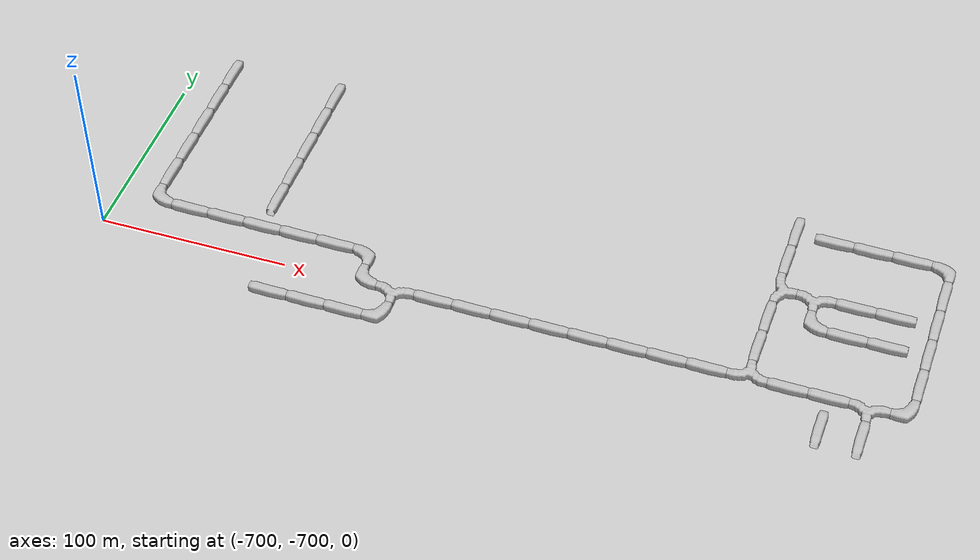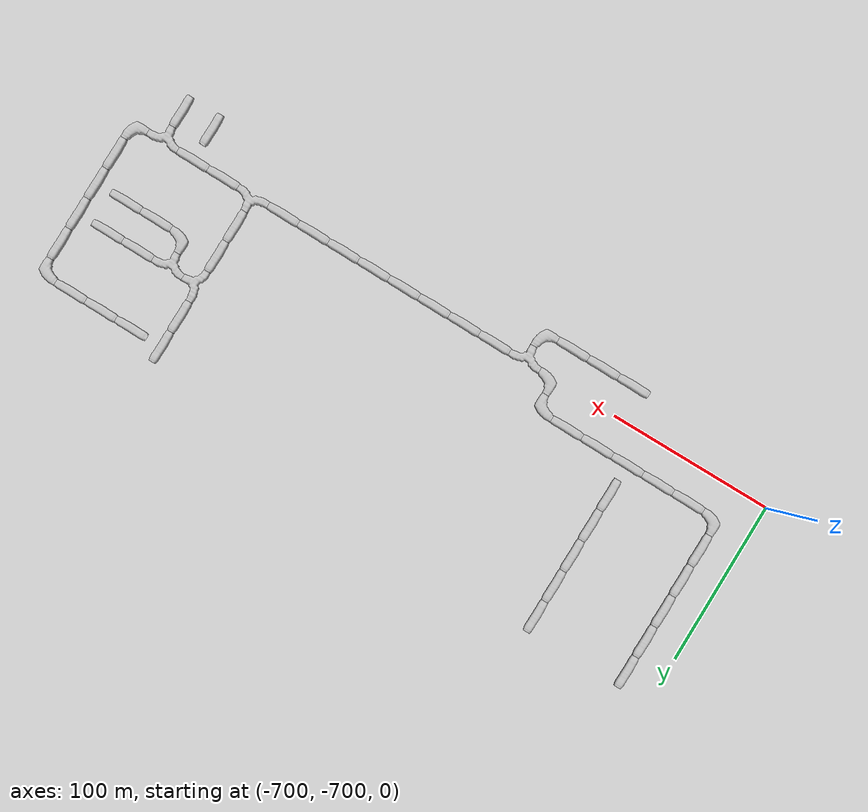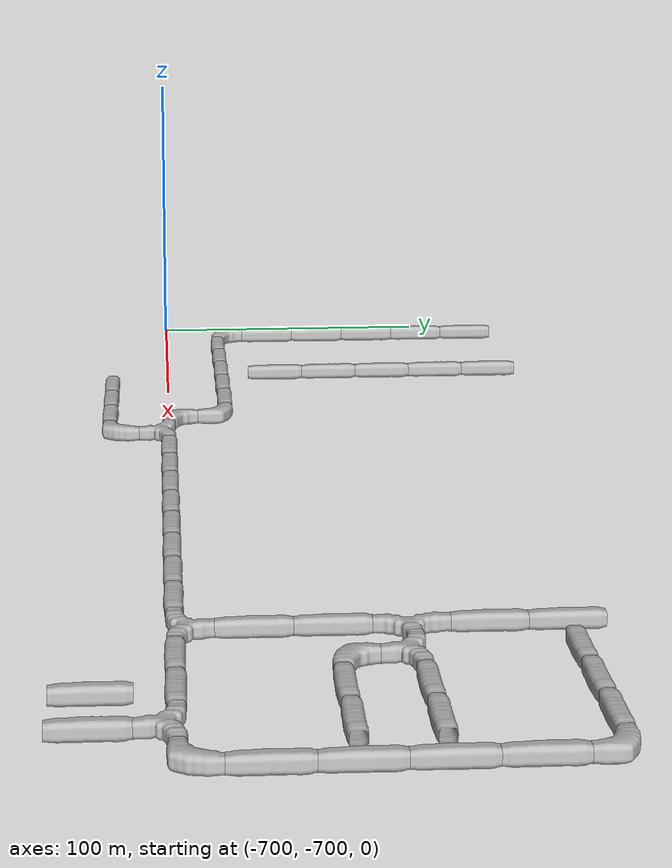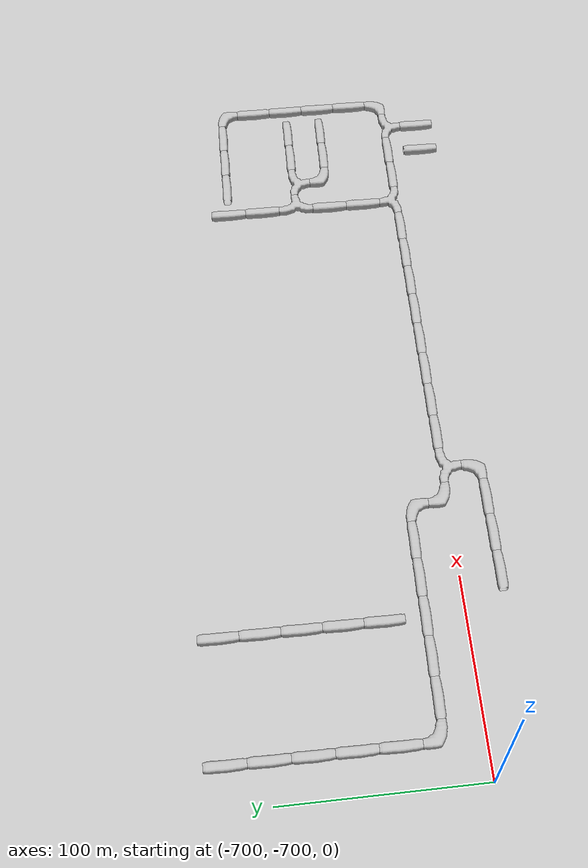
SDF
<sdf version="1.6">
 <world name="cave_32000_16">
  <include>
   <static>true</static>
   <name>cave_-30_-36</name>
   <pose>-600 -720 0 0 0 1.5707963267948966</pose>
   <uri>model://cave_straight_20m</uri>
  </include>
  <include>
   <static>true</static>
   <name>cave_-29_-36</name>
   <pose>-580 -720 0 0 0 1.5707963267948966</pose>
   <uri>model://cave_straight_20m</uri>
  </include>
  <include>
   <static>true</static>
   <name>cave_-28_-36</name>
   <pose>-560 -720 0 0 0 1.5707963267948966</pose>
   <uri>model://cave_straight_20m</uri>
  </include>
  <include>
   <static>true</static>
   <name>cave_-27_-36</name>
   <pose>-540 -720 0 0 0 1.5707963267948966</pose>
   <uri>model://cave_L_20m</uri>
  </include>
  <include>
   <static>true</static>
   <name>cave_-27_-35</name>
   <pose>-540 -700 0 0 0 3.141592653589793</pose>
   <uri>model://cave_3way_20m</uri>
  </include>
  <include>
   <static>true</static>
   <name>cave_-26_-35</name>
   <pose>-520 -700 0 0 0 1.5707963267948966</pose>
   <uri>model://cave_straight_20m</uri>
  </include>
  <include>
   <static>true</static>
   <name>cave_-25_-35</name>
   <pose>-500 -700 0 0 0 1.5707963267948966</pose>
   <uri>model://cave_straight_20m</uri>
  </include>
  <include>
   <static>true</static>
   <name>cave_-24_-35</name>
   <pose>-480 -700 0 0 0 1.5707963267948966</pose>
   <uri>model://cave_straight_20m</uri>
  </include>
  <include>
   <static>true</static>
   <name>cave_-23_-35</name>
   <pose>-460 -700 0 0 0 1.5707963267948966</pose>
   <uri>model://cave_straight_20m</uri>
  </include>
  <include>
   <static>true</static>
   <name>cave_-22_-35</name>
   <pose>-440 -700 0 0 0 1.5707963267948966</pose>
   <uri>model://cave_straight_20m</uri>
  </include>
  <include>
   <static>true</static>
   <name>cave_-21_-35</name>
   <pose>-420 -700 0 0 0 1.5707963267948966</pose>
   <uri>model://cave_straight_20m</uri>
  </include>
  <include>
   <static>true</static>
   <name>cave_-20_-35</name>
   <pose>-400 -700 0 0 0 1.5707963267948966</pose>
   <uri>model://cave_straight_20m</uri>
  </include>
  <include>
   <static>true</static>
   <name>cave_-19_-35</name>
   <pose>-380 -700 0 0 0 1.5707963267948966</pose>
   <uri>model://cave_straight_20m</uri>
  </include>
  <include>
   <static>true</static>
   <name>cave_-18_-35</name>
   <pose>-360 -700 0 0 0 0.0</pose>
   <uri>model://cave_3way_20m</uri>
  </include>
  <include>
   <static>true</static>
   <name>cave_-17_-35</name>
   <pose>-340 -700 0 0 0 1.5707963267948966</pose>
   <uri>model://cave_straight_20m</uri>
  </include>
  <include>
   <static>true</static>
   <name>cave_-16_-35</name>
   <pose>-320 -700 0 0 0 1.5707963267948966</pose>
   <uri>model://cave_straight_20m</uri>
  </include>
  <include>
   <static>true</static>
   <name>cave_-15_-35</name>
   <pose>-300 -700 0 0 0 3.141592653589793</pose>
   <uri>model://cave_3way_20m</uri>
  </include>
  <include>
   <static>true</static>
   <name>cave_-14_-35</name>
   <pose>-280 -700 0 0 0 1.5707963267948966</pose>
   <uri>model://cave_L_20m</uri>
  </include>
  <include>
   <static>true</static>
   <name>cave_-14_-34</name>
   <pose>-280 -680 0 0 0 0.0</pose>
   <uri>model://cave_straight_20m</uri>
  </include>
  <include>
   <static>true</static>
   <name>cave_-14_-33</name>
   <pose>-280 -660 0 0 0 0.0</pose>
   <uri>model://cave_straight_20m</uri>
  </include>
  <include>
   <static>true</static>
   <name>cave_-14_-32</name>
   <pose>-280 -640 0 0 0 0.0</pose>
   <uri>model://cave_straight_20m</uri>
  </include>
  <include>
   <static>true</static>
   <name>cave_-14_-31</name>
   <pose>-280 -620 0 0 0 0.0</pose>
   <uri>model://cave_straight_20m</uri>
  </include>
  <include>
   <static>true</static>
   <name>cave_-14_-30</name>
   <pose>-280 -600 0 0 0 3.141592653589793</pose>
   <uri>model://cave_L_20m</uri>
  </include>
  <include>
   <static>true</static>
   <name>cave_-15_-30</name>
   <pose>-300 -600 0 0 0 1.5707963267948966</pose>
   <uri>model://cave_straight_20m</uri>
  </include>
  <include>
   <static>true</static>
   <name>cave_-16_-30</name>
   <pose>-320 -600 0 0 0 1.5707963267948966</pose>
   <uri>model://cave_straight_20m</uri>
  </include>
  <include>
   <static>true</static>
   <name>cave_-17_-30</name>
   <pose>-340 -600 0 0 0 1.5707963267948966</pose>
   <uri>model://cave_straight_20m</uri>
  </include>
  <include>
   <static>true</static>
   <name>cave_-15_-36</name>
   <pose>-300 -720 0 0 0 0.0</pose>
   <uri>model://cave_straight_20m</uri>
  </include>
  <include>
   <static>true</static>
   <name>cave_-16_-36</name>
   <pose>-320 -720 0 0 0 0.0</pose>
   <uri>model://cave_straight_20m</uri>
  </include>
  <include>
   <static>true</static>
   <name>cave_-18_-34</name>
   <pose>-360 -680 0 0 0 0.0</pose>
   <uri>model://cave_straight_20m</uri>
  </include>
  <include>
   <static>true</static>
   <name>cave_-18_-33</name>
   <pose>-360 -660 0 0 0 0.0</pose>
   <uri>model://cave_straight_20m</uri>
  </include>
  <include>
   <static>true</static>
   <name>cave_-18_-32</name>
   <pose>-360 -640 0 0 0 -1.5707963267948966</pose>
   <uri>model://cave_3way_20m</uri>
  </include>
  <include>
   <static>true</static>
   <name>cave_-17_-32</name>
   <pose>-340 -640 0 0 0 3.141592653589793</pose>
   <uri>model://cave_3way_20m</uri>
  </include>
  <include>
   <static>true</static>
   <name>cave_-16_-32</name>
   <pose>-320 -640 0 0 0 1.5707963267948966</pose>
   <uri>model://cave_straight_20m</uri>
  </include>
  <include>
   <static>true</static>
   <name>cave_-15_-32</name>
   <pose>-300 -640 0 0 0 1.5707963267948966</pose>
   <uri>model://cave_straight_20m</uri>
  </include>
  <include>
   <static>true</static>
   <name>cave_-17_-33</name>
   <pose>-340 -660 0 0 0 0.0</pose>
   <uri>model://cave_L_20m</uri>
  </include>
  <include>
   <static>true</static>
   <name>cave_-16_-33</name>
   <pose>-320 -660 0 0 0 1.5707963267948966</pose>
   <uri>model://cave_straight_20m</uri>
  </include>
  <include>
   <static>true</static>
   <name>cave_-15_-33</name>
   <pose>-300 -660 0 0 0 1.5707963267948966</pose>
   <uri>model://cave_straight_20m</uri>
  </include>
  <include>
   <static>true</static>
   <name>cave_-18_-31</name>
   <pose>-360 -620 0 0 0 0.0</pose>
   <uri>model://cave_straight_20m</uri>
  </include>
  <include>
   <static>true</static>
   <name>cave_-18_-30</name>
   <pose>-360 -600 0 0 0 0.0</pose>
   <uri>model://cave_straight_20m</uri>
  </include>
  <include>
   <static>true</static>
   <name>cave_-28_-35</name>
   <pose>-560 -700 0 0 0 0.0</pose>
   <uri>model://cave_L_20m</uri>
  </include>
  <include>
   <static>true</static>
   <name>cave_-28_-34</name>
   <pose>-560 -680 0 0 0 3.141592653589793</pose>
   <uri>model://cave_L_20m</uri>
  </include>
  <include>
   <static>true</static>
   <name>cave_-29_-34</name>
   <pose>-580 -680 0 0 0 1.5707963267948966</pose>
   <uri>model://cave_straight_20m</uri>
  </include>
  <include>
   <static>true</static>
   <name>cave_-30_-34</name>
   <pose>-600 -680 0 0 0 1.5707963267948966</pose>
   <uri>model://cave_straight_20m</uri>
  </include>
  <include>
   <static>true</static>
   <name>cave_-31_-34</name>
   <pose>-620 -680 0 0 0 1.5707963267948966</pose>
   <uri>model://cave_straight_20m</uri>
  </include>
  <include>
   <static>true</static>
   <name>cave_-32_-34</name>
   <pose>-640 -680 0 0 0 1.5707963267948966</pose>
   <uri>model://cave_straight_20m</uri>
  </include>
  <include>
   <static>true</static>
   <name>cave_-33_-34</name>
   <pose>-660 -680 0 0 0 1.5707963267948966</pose>
   <uri>model://cave_straight_20m</uri>
  </include>
  <include>
   <static>true</static>
   <name>cave_-34_-34</name>
   <pose>-680 -680 0 0 0 0.0</pose>
   <uri>model://cave_L_20m</uri>
  </include>
  <include>
   <static>true</static>
   <name>cave_-34_-33</name>
   <pose>-680 -660 0 0 0 0.0</pose>
   <uri>model://cave_straight_20m</uri>
  </include>
  <include>
   <static>true</static>
   <name>cave_-34_-32</name>
   <pose>-680 -640 0 0 0 0.0</pose>
   <uri>model://cave_straight_20m</uri>
  </include>
  <include>
   <static>true</static>
   <name>cave_-34_-31</name>
   <pose>-680 -620 0 0 0 0.0</pose>
   <uri>model://cave_straight_20m</uri>
  </include>
  <include>
   <static>true</static>
   <name>cave_-34_-30</name>
   <pose>-680 -600 0 0 0 0.0</pose>
   <uri>model://cave_straight_20m</uri>
  </include>
  <include>
   <static>true</static>
   <name>cave_-34_-29</name>
   <pose>-680 -580 0 0 0 0.0</pose>
   <uri>model://cave_straight_20m</uri>
  </include>
  <include>
   <static>true</static>
   <name>cave_-31_-29</name>
   <pose>-620 -580 0 0 0 0.0</pose>
   <uri>model://cave_straight_20m</uri>
  </include>
  <include>
   <static>true</static>
   <name>cave_-31_-30</name>
   <pose>-620 -600 0 0 0 0.0</pose>
   <uri>model://cave_straight_20m</uri>
  </include>
  <include>
   <static>true</static>
   <name>cave_-31_-31</name>
   <pose>-620 -620 0 0 0 0.0</pose>
   <uri>model://cave_straight_20m</uri>
  </include>
  <include>
   <static>true</static>
   <name>cave_-31_-32</name>
   <pose>-620 -640 0 0 0 0.0</pose>
   <uri>model://cave_straight_20m</uri>
  </include>
  <include>
   <static>true</static>
   <name>cave_-31_-33</name>
   <pose>-620 -660 0 0 0 0.0</pose>
   <uri>model://cave_straight_20m</uri>
  </include>
 </world>
</sdf>
